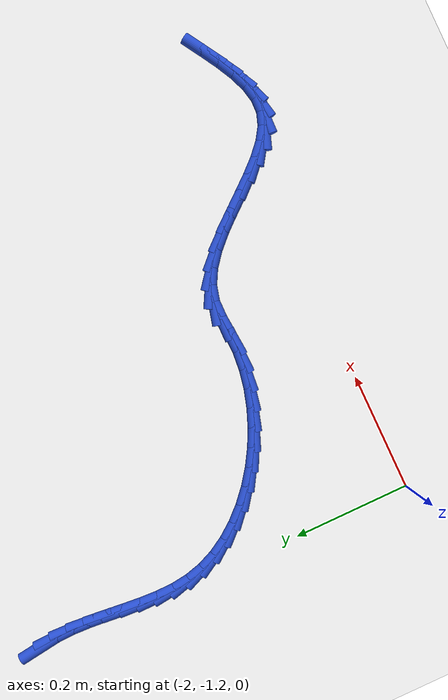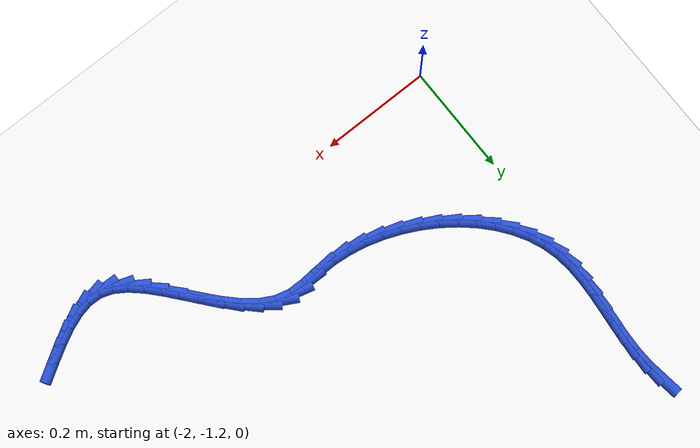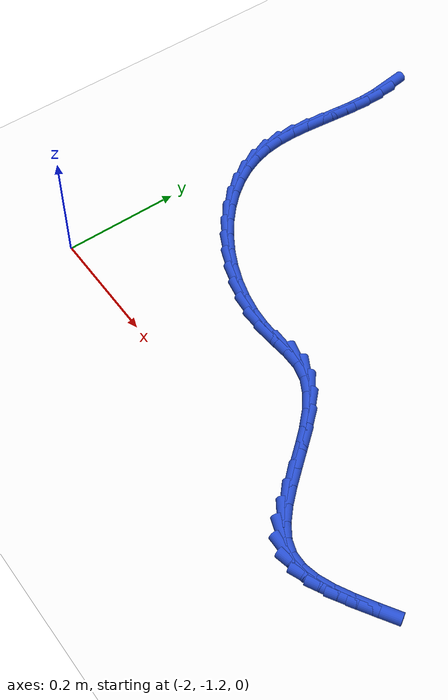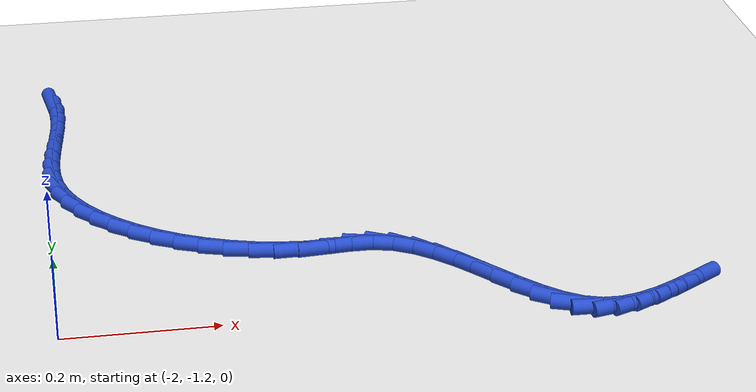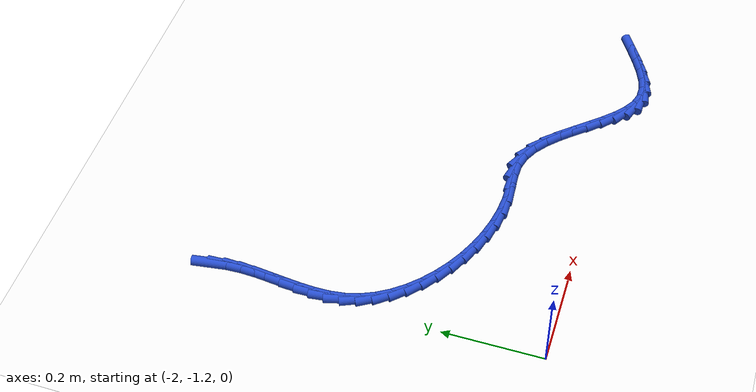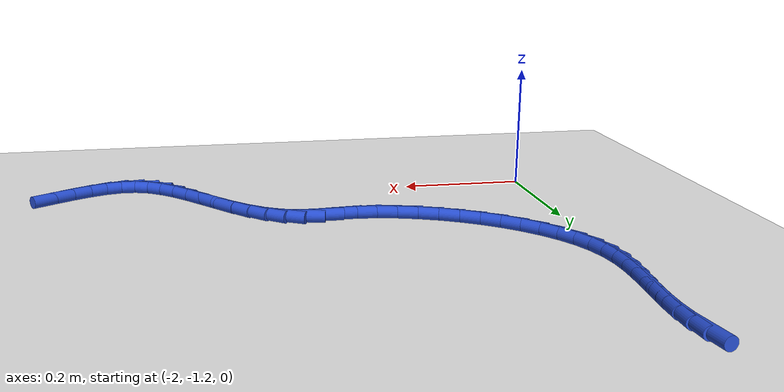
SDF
<sdf version="1.6">
 <world name="default">
  <model name="ground_plane">
   <static>1</static>
   <link name="link">
    <collision name="collision">
     <geometry><plane><normal>0 0 1</normal><size>100 100</size></plane></geometry>
     <surface><friction><ode><mu>100</mu><mu2>50</mu2></ode></friction></surface>
    </collision>
    <visual name="visual">
     <cast_shadows>0</cast_shadows>
     <geometry><plane><normal>0 0 1</normal><size>100 100</size></plane></geometry>
     <material>
      <script><uri>file://media/materials/scripts/gazebo.material</uri><name>Gazebo/WhiteGlow</name></script>
     </material>
    </visual>
   </link>
  </model>
  <model name="line">
   <link name="link_147">
    <pose>-1.9851184222499074 -0.5397213275030551 0.01 0 1.57 -1.4361329957531321</pose>
    <collision name="collision">
     <geometry><cylinder><radius>0.01</radius><length>0.08</length></cylinder></geometry>
    </collision>
    <visual name="visual">
     <material>
      <script><name>Gazebo/Blue</name><uri>file://media/materials/scripts/gazebo.material</uri></script>
     </material>
     <geometry><cylinder><radius>0.01</radius><length>0.08</length></cylinder></geometry>
    </visual>
   </link>
   <link name="link_148">
    <pose>-1.9811357230243811 -0.569117568248268 0.01 0 1.57 -1.5362706568938076</pose>
    <collision name="collision">
     <geometry><cylinder><radius>0.01</radius><length>0.08</length></cylinder></geometry>
    </collision>
    <visual name="visual">
     <material>
      <script><name>Gazebo/Blue</name><uri>file://media/materials/scripts/gazebo.material</uri></script>
     </material>
     <geometry><cylinder><radius>0.01</radius><length>0.08</length></cylinder></geometry>
    </visual>
   </link>
   <link name="link_149">
    <pose>-1.9801048992913468 -0.5989624377405792 0.01 0 1.57 1.5291001168258458</pose>
    <collision name="collision">
     <geometry><cylinder><radius>0.01</radius><length>0.08</length></cylinder></geometry>
    </collision>
    <visual name="visual">
     <material>
      <script><name>Gazebo/Blue</name><uri>file://media/materials/scripts/gazebo.material</uri></script>
     </material>
     <geometry><cylinder><radius>0.01</radius><length>0.08</length></cylinder></geometry>
    </visual>
   </link>
   <link name="link_150">
    <pose>-1.9813637031465046 -0.6291348266380494 0.01 0 1.57 1.483247794115627</pose>
    <collision name="collision">
     <geometry><cylinder><radius>0.01</radius><length>0.08</length></cylinder></geometry>
    </collision>
    <visual name="visual">
     <material>
      <script><name>Gazebo/Blue</name><uri>file://media/materials/scripts/gazebo.material</uri></script>
     </material>
     <geometry><cylinder><radius>0.01</radius><length>0.08</length></cylinder></geometry>
    </visual>
   </link>
   <link name="link_151">
    <pose>-1.9840273328034563 -0.659481661105879 0.01 0 1.57 1.4663427822840627</pose>
    <collision name="collision">
     <geometry><cylinder><radius>0.01</radius><length>0.08</length></cylinder></geometry>
    </collision>
    <visual name="visual">
     <material>
      <script><name>Gazebo/Blue</name><uri>file://media/materials/scripts/gazebo.material</uri></script>
     </material>
     <geometry><cylinder><radius>0.01</radius><length>0.08</length></cylinder></geometry>
    </visual>
   </link>
   <link name="link_152">
    <pose>-1.9872109864758067 -0.6898498673092693 0.01 0 1.57 1.477837445842498</pose>
    <collision name="collision">
     <geometry><cylinder><radius>0.01</radius><length>0.08</length></cylinder></geometry>
    </collision>
    <visual name="visual">
     <material>
      <script><name>Gazebo/Blue</name><uri>file://media/materials/scripts/gazebo.material</uri></script>
     </material>
     <geometry><cylinder><radius>0.01</radius><length>0.08</length></cylinder></geometry>
    </visual>
   </link>
   <link name="link_153">
    <pose>-1.9900298623771602 -0.7200863714134215 0.01 0 1.57 1.5184500077191856</pose>
    <collision name="collision">
     <geometry><cylinder><radius>0.01</radius><length>0.08</length></cylinder></geometry>
    </collision>
    <visual name="visual">
     <material>
      <script><name>Gazebo/Blue</name><uri>file://media/materials/scripts/gazebo.material</uri></script>
     </material>
     <geometry><cylinder><radius>0.01</radius><length>0.08</length></cylinder></geometry>
    </visual>
   </link>
   <link name="link_154">
    <pose>-1.9915991587211195 -0.7500380995835363 0.01 0 1.57 -1.551652249668758</pose>
    <collision name="collision">
     <geometry><cylinder><radius>0.01</radius><length>0.08</length></cylinder></geometry>
    </collision>
    <visual name="visual">
     <material>
      <script><name>Gazebo/Blue</name><uri>file://media/materials/scripts/gazebo.material</uri></script>
     </material>
     <geometry><cylinder><radius>0.01</radius><length>0.08</length></cylinder></geometry>
    </visual>
   </link>
   <link name="link_155">
    <pose>-1.9910340737212884 -0.7795519779848145 0.01 0 1.57 -1.447500241391103</pose>
    <collision name="collision">
     <geometry><cylinder><radius>0.01</radius><length>0.08</length></cylinder></geometry>
    </collision>
    <visual name="visual">
     <material>
      <script><name>Gazebo/Blue</name><uri>file://media/materials/scripts/gazebo.material</uri></script>
     </material>
     <geometry><cylinder><radius>0.01</radius><length>0.08</length></cylinder></geometry>
    </visual>
   </link>
   <link name="link_156">
    <pose>-1.987449805591271 -0.8084749327824576 0.01 0 1.57 -1.3120986927493585</pose>
    <collision name="collision">
     <geometry><cylinder><radius>0.01</radius><length>0.08</length></cylinder></geometry>
    </collision>
    <visual name="visual">
     <material>
      <script><name>Gazebo/Blue</name><uri>file://media/materials/scripts/gazebo.material</uri></script>
     </material>
     <geometry><cylinder><radius>0.01</radius><length>0.08</length></cylinder></geometry>
    </visual>
   </link>
   <link name="link_157">
    <pose>-1.9799932837650576 -0.8366523596493743 0.01 0 1.57 -1.169827588119271</pose>
    <collision name="collision">
     <geometry><cylinder><radius>0.01</radius><length>0.08</length></cylinder></geometry>
    </collision>
    <visual name="visual">
     <material>
      <script><name>Gazebo/Blue</name><uri>file://media/materials/scripts/gazebo.material</uri></script>
     </material>
     <geometry><cylinder><radius>0.01</radius><length>0.08</length></cylinder></geometry>
    </visual>
   </link>
   <link name="link_158">
    <pose>-1.968442368820023 -0.8638992225498932 0.01 0 1.57 -1.041005741564891</pose>
    <collision name="collision">
     <geometry><cylinder><radius>0.01</radius><length>0.08</length></cylinder></geometry>
    </collision>
    <visual name="visual">
     <material>
      <script><name>Gazebo/Blue</name><uri>file://media/materials/scripts/gazebo.material</uri></script>
     </material>
     <geometry><cylinder><radius>0.01</radius><length>0.08</length></cylinder></geometry>
    </visual>
   </link>
   <link name="link_159">
    <pose>-1.9531553630445262 -0.8900024889970934 0.01 0 1.57 -0.9251265914127694</pose>
    <collision name="collision">
     <geometry><cylinder><radius>0.01</radius><length>0.08</length></cylinder></geometry>
    </collision>
    <visual name="visual">
     <material>
      <script><name>Gazebo/Blue</name><uri>file://media/materials/scripts/gazebo.material</uri></script>
     </material>
     <geometry><cylinder><radius>0.01</radius><length>0.08</length></cylinder></geometry>
    </visual>
   </link>
   <link name="link_160">
    <pose>-1.934512180034116 -0.9147480841256446 0.01 0 1.57 -0.8200859170970403</pose>
    <collision name="collision">
     <geometry><cylinder><radius>0.01</radius><length>0.08</length></cylinder></geometry>
    </collision>
    <visual name="visual">
     <material>
      <script><name>Gazebo/Blue</name><uri>file://media/materials/scripts/gazebo.material</uri></script>
     </material>
     <geometry><cylinder><radius>0.01</radius><length>0.08</length></cylinder></geometry>
    </visual>
   </link>
   <link name="link_161">
    <pose>-1.912892733384336 -0.9379219330702155 0.01 0 1.57 -0.7234701782535463</pose>
    <collision name="collision">
     <geometry><cylinder><radius>0.01</radius><length>0.08</length></cylinder></geometry>
    </collision>
    <visual name="visual">
     <material>
      <script><name>Gazebo/Blue</name><uri>file://media/materials/scripts/gazebo.material</uri></script>
     </material>
     <geometry><cylinder><radius>0.01</radius><length>0.08</length></cylinder></geometry>
    </visual>
   </link>
   <link name="link_162">
    <pose>-1.8886769366907337 -0.9593099609654755 0.01 0 1.57 -0.6328593964163669</pose>
    <collision name="collision">
     <geometry><cylinder><radius>0.01</radius><length>0.08</length></cylinder></geometry>
    </collision>
    <visual name="visual">
     <material>
      <script><name>Gazebo/Blue</name><uri>file://media/materials/scripts/gazebo.material</uri></script>
     </material>
     <geometry><cylinder><radius>0.01</radius><length>0.08</length></cylinder></geometry>
    </visual>
   </link>
   <link name="link_163">
    <pose>-1.8622447035488547 -0.978698092946094 0.01 0 1.57 -0.5459390099519175</pose>
    <collision name="collision">
     <geometry><cylinder><radius>0.01</radius><length>0.08</length></cylinder></geometry>
    </collision>
    <visual name="visual">
     <material>
      <script><name>Gazebo/Blue</name><uri>file://media/materials/scripts/gazebo.material</uri></script>
     </material>
     <geometry><cylinder><radius>0.01</radius><length>0.08</length></cylinder></geometry>
    </visual>
   </link>
   <link name="link_164">
    <pose>-1.8339759475542463 -0.9958722541467402 0.01 0 1.57 -0.46050551622645053</pose>
    <collision name="collision">
     <geometry><cylinder><radius>0.01</radius><length>0.08</length></cylinder></geometry>
    </collision>
    <visual name="visual">
     <material>
      <script><name>Gazebo/Blue</name><uri>file://media/materials/scripts/gazebo.material</uri></script>
     </material>
     <geometry><cylinder><radius>0.01</radius><length>0.08</length></cylinder></geometry>
    </visual>
   </link>
   <link name="link_165">
    <pose>-1.8042505823024533 -1.0106183697020832 0.01 0 1.57 -0.3744232012385631</pose>
    <collision name="collision">
     <geometry><cylinder><radius>0.01</radius><length>0.08</length></cylinder></geometry>
    </collision>
    <visual name="visual">
     <material>
      <script><name>Gazebo/Blue</name><uri>file://media/materials/scripts/gazebo.material</uri></script>
     </material>
     <geometry><cylinder><radius>0.01</radius><length>0.08</length></cylinder></geometry>
    </visual>
   </link>
   <link name="link_166">
    <pose>-1.7734485213890223 -1.0227223647467922 0.01 0 1.57 -0.28556732421783004</pose>
    <collision name="collision">
     <geometry><cylinder><radius>0.01</radius><length>0.08</length></cylinder></geometry>
    </collision>
    <visual name="visual">
     <material>
      <script><name>Gazebo/Blue</name><uri>file://media/materials/scripts/gazebo.material</uri></script>
     </material>
     <geometry><cylinder><radius>0.01</radius><length>0.08</length></cylinder></geometry>
    </visual>
   </link>
   <link name="link_167">
    <pose>-1.7419496784094999 -1.0319701644155366 0.01 0 1.57 -0.19177970281806553</pose>
    <collision name="collision">
     <geometry><cylinder><radius>0.01</radius><length>0.08</length></cylinder></geometry>
    </collision>
    <visual name="visual">
     <material>
      <script><name>Gazebo/Blue</name><uri>file://media/materials/scripts/gazebo.material</uri></script>
     </material>
     <geometry><cylinder><radius>0.01</radius><length>0.08</length></cylinder></geometry>
    </visual>
   </link>
   <link name="link_168">
    <pose>-1.710133966959432 -1.0381476938429852 0.01 0 1.57 -0.09086535809953926</pose>
    <collision name="collision">
     <geometry><cylinder><radius>0.01</radius><length>0.08</length></cylinder></geometry>
    </collision>
    <visual name="visual">
     <material>
      <script><name>Gazebo/Blue</name><uri>file://media/materials/scripts/gazebo.material</uri></script>
     </material>
     <geometry><cylinder><radius>0.01</radius><length>0.08</length></cylinder></geometry>
    </visual>
   </link>
   <link name="link_169">
    <pose>-1.6783813006343646 -1.0410408781638076 0.01 0 1.57 0.018235758841825666</pose>
    <collision name="collision">
     <geometry><cylinder><radius>0.01</radius><length>0.08</length></cylinder></geometry>
    </collision>
    <visual name="visual">
     <material>
      <script><name>Gazebo/Blue</name><uri>file://media/materials/scripts/gazebo.material</uri></script>
     </material>
     <geometry><cylinder><radius>0.01</radius><length>0.08</length></cylinder></geometry>
    </visual>
   </link>
   <link name="link_170">
    <pose>-1.6470725699707507 -1.0404698764061855 0.01 0 1.57 0.07714940785560871</pose>
    <collision name="collision">
     <geometry><cylinder><radius>0.01</radius><length>0.08</length></cylinder></geometry>
    </collision>
    <visual name="visual">
     <material>
      <script><name>Gazebo/Blue</name><uri>file://media/materials/scripts/gazebo.material</uri></script>
     </material>
     <geometry><cylinder><radius>0.01</radius><length>0.08</length></cylinder></geometry>
    </visual>
   </link>
   <link name="link_171">
    <pose>-1.6166418202700834 -1.03811749308026 0.01 0 1.57 -0.011403360086827173</pose>
    <collision name="collision">
     <geometry><cylinder><radius>0.01</radius><length>0.08</length></cylinder></geometry>
    </collision>
    <visual name="visual">
     <material>
      <script><name>Gazebo/Blue</name><uri>file://media/materials/scripts/gazebo.material</uri></script>
     </material>
     <geometry><cylinder><radius>0.01</radius><length>0.08</length></cylinder></geometry>
    </visual>
   </link>
   <link name="link_172">
    <pose>-1.5876024908848778 -1.0384486533643653 0.01 0 1.57 -0.2538470353343866</pose>
    <collision name="collision">
     <geometry><cylinder><radius>0.01</radius><length>0.08</length></cylinder></geometry>
    </collision>
    <visual name="visual">
     <material>
      <script><name>Gazebo/Blue</name><uri>file://media/materials/scripts/gazebo.material</uri></script>
     </material>
     <geometry><cylinder><radius>0.01</radius><length>0.08</length></cylinder></geometry>
    </visual>
   </link>
   <link name="link_173">
    <pose>-1.5603892082314181 -1.045508971667431 0.01 0 1.57 -0.49740982913338744</pose>
    <collision name="collision">
     <geometry><cylinder><radius>0.01</radius><length>0.08</length></cylinder></geometry>
    </collision>
    <visual name="visual">
     <material>
      <script><name>Gazebo/Blue</name><uri>file://media/materials/scripts/gazebo.material</uri></script>
     </material>
     <geometry><cylinder><radius>0.01</radius><length>0.08</length></cylinder></geometry>
    </visual>
   </link>
   <link name="link_174">
    <pose>-1.5349089336717958 -1.0593433347889012 0.01 0 1.57 -0.6719927715885784</pose>
    <collision name="collision">
     <geometry><cylinder><radius>0.01</radius><length>0.08</length></cylinder></geometry>
    </collision>
    <visual name="visual">
     <material>
      <script><name>Gazebo/Blue</name><uri>file://media/materials/scripts/gazebo.material</uri></script>
     </material>
     <geometry><cylinder><radius>0.01</radius><length>0.08</length></cylinder></geometry>
    </visual>
   </link>
   <link name="link_175">
    <pose>-1.5108671037817143 -1.0784686796090488 0.01 0 1.57 -0.78609342332403</pose>
    <collision name="collision">
     <geometry><cylinder><radius>0.01</radius><length>0.08</length></cylinder></geometry>
    </collision>
    <visual name="visual">
     <material>
      <script><name>Gazebo/Blue</name><uri>file://media/materials/scripts/gazebo.material</uri></script>
     </material>
     <geometry><cylinder><radius>0.01</radius><length>0.08</length></cylinder></geometry>
    </visual>
   </link>
   <link name="link_176">
    <pose>-1.4879687528988577 -1.1013988932614536 0.01 0 1.57 -0.852931939562418</pose>
    <collision name="collision">
     <geometry><cylinder><radius>0.01</radius><length>0.08</length></cylinder></geometry>
    </collision>
    <visual name="visual">
     <material>
      <script><name>Gazebo/Blue</name><uri>file://media/materials/scripts/gazebo.material</uri></script>
     </material>
     <geometry><cylinder><radius>0.01</radius><length>0.08</length></cylinder></geometry>
    </visual>
   </link>
   <link name="link_177">
    <pose>-1.4659189153609062 -1.126647862879697 0.01 0 1.57 -0.8814764858725342</pose>
    <collision name="collision">
     <geometry><cylinder><radius>0.01</radius><length>0.08</length></cylinder></geometry>
    </collision>
    <visual name="visual">
     <material>
      <script><name>Gazebo/Blue</name><uri>file://media/materials/scripts/gazebo.material</uri></script>
     </material>
     <geometry><cylinder><radius>0.01</radius><length>0.08</length></cylinder></geometry>
    </visual>
   </link>
   <link name="link_178">
    <pose>-1.444422625505544 -1.1527294755973587 0.01 0 1.57 -0.8749545762829078</pose>
    <collision name="collision">
     <geometry><cylinder><radius>0.01</radius><length>0.08</length></cylinder></geometry>
    </collision>
    <visual name="visual">
     <material>
      <script><name>Gazebo/Blue</name><uri>file://media/materials/scripts/gazebo.material</uri></script>
     </material>
     <geometry><cylinder><radius>0.01</radius><length>0.08</length></cylinder></geometry>
    </visual>
   </link>
   <link name="link_179">
    <pose>-1.4231849176704532 -1.1781576185480196 0.01 0 1.57 -0.8305727263127661</pose>
    <collision name="collision">
     <geometry><cylinder><radius>0.01</radius><length>0.08</length></cylinder></geometry>
    </collision>
    <visual name="visual">
     <material>
      <script><name>Gazebo/Blue</name><uri>file://media/materials/scripts/gazebo.material</uri></script>
     </material>
     <geometry><cylinder><radius>0.01</radius><length>0.08</length></cylinder></geometry>
    </visual>
   </link>
   <link name="link_180">
    <pose>-1.401910826193317 -1.2014461788652593 0.01 0 1.57 -0.7383610224349136</pose>
    <collision name="collision">
     <geometry><cylinder><radius>0.01</radius><length>0.08</length></cylinder></geometry>
    </collision>
    <visual name="visual">
     <material>
      <script><name>Gazebo/Blue</name><uri>file://media/materials/scripts/gazebo.material</uri></script>
     </material>
     <geometry><cylinder><radius>0.01</radius><length>0.08</length></cylinder></geometry>
    </visual>
   </link>
   <link name="link_181">
    <pose>-1.3803053854118177 -1.2211090436826582 0.01 0 1.57 -0.5795438877144233</pose>
    <collision name="collision">
     <geometry><cylinder><radius>0.01</radius><length>0.08</length></cylinder></geometry>
    </collision>
    <visual name="visual">
     <material>
      <script><name>Gazebo/Blue</name><uri>file://media/materials/scripts/gazebo.material</uri></script>
     </material>
     <geometry><cylinder><radius>0.01</radius><length>0.08</length></cylinder></geometry>
    </visual>
   </link>
   <link name="link_182">
    <pose>-1.3580736296636389 -1.2356601001337975 0.01 0 1.57 -0.3310881322935057</pose>
    <collision name="collision">
     <geometry><cylinder><radius>0.01</radius><length>0.08</length></cylinder></geometry>
    </collision>
    <visual name="visual">
     <material>
      <script><name>Gazebo/Blue</name><uri>file://media/materials/scripts/gazebo.material</uri></script>
     </material>
     <geometry><cylinder><radius>0.01</radius><length>0.08</length></cylinder></geometry>
    </visual>
   </link>
   <link name="link_183">
    <pose>-1.3349213450894724 -1.2436184922914089 0.01 0 1.57 -0.02928882889198799</pose>
    <collision name="collision">
     <geometry><cylinder><radius>0.01</radius><length>0.08</length></cylinder></geometry>
    </collision>
    <visual name="visual">
     <material>
      <script><name>Gazebo/Blue</name><uri>file://media/materials/scripts/gazebo.material</uri></script>
     </material>
     <geometry><cylinder><radius>0.01</radius><length>0.08</length></cylinder></geometry>
    </visual>
   </link>
   <link name="link_184">
    <pose>-1.3106723817229948 -1.2443289191850122 0.01 0 1.57 0.21334446643645025</pose>
    <collision name="collision">
     <geometry><cylinder><radius>0.01</radius><length>0.08</length></cylinder></geometry>
    </collision>
    <visual name="visual">
     <material>
      <script><name>Gazebo/Blue</name><uri>file://media/materials/scripts/gazebo.material</uri></script>
     </material>
     <geometry><cylinder><radius>0.01</radius><length>0.08</length></cylinder></geometry>
    </visual>
   </link>
   <link name="link_185">
    <pose>-1.285396134545599 -1.2388530387176546 0.01 0 1.57 0.3773776385320751</pose>
    <collision name="collision">
     <geometry><cylinder><radius>0.01</radius><length>0.08</length></cylinder></geometry>
    </collision>
    <visual name="visual">
     <material>
      <script><name>Gazebo/Blue</name><uri>file://media/materials/scripts/gazebo.material</uri></script>
     </material>
     <geometry><cylinder><radius>0.01</radius><length>0.08</length></cylinder></geometry>
    </visual>
   </link>
   <link name="link_186">
    <pose>-1.2591926181995394 -1.2284666150035255 0.01 0 1.57 0.4785054174654746</pose>
    <collision name="collision">
     <geometry><cylinder><radius>0.01</radius><length>0.08</length></cylinder></geometry>
    </collision>
    <visual name="visual">
     <material>
      <script><name>Gazebo/Blue</name><uri>file://media/materials/scripts/gazebo.material</uri></script>
     </material>
     <geometry><cylinder><radius>0.01</radius><length>0.08</length></cylinder></geometry>
    </visual>
   </link>
   <link name="link_187">
    <pose>-1.2321618473270697 -1.2144454121568118 0.01 0 1.57 0.5331140495599519</pose>
    <collision name="collision">
     <geometry><cylinder><radius>0.01</radius><length>0.08</length></cylinder></geometry>
    </collision>
    <visual name="visual">
     <material>
      <script><name>Gazebo/Blue</name><uri>file://media/materials/scripts/gazebo.material</uri></script>
     </material>
     <geometry><cylinder><radius>0.01</radius><length>0.08</length></cylinder></geometry>
    </visual>
   </link>
   <link name="link_188">
    <pose>-1.2044038365704441 -1.1980651942917027 0.01 0 1.57 0.55154334065536</pose>
    <collision name="collision">
     <geometry><cylinder><radius>0.01</radius><length>0.08</length></cylinder></geometry>
    </collision>
    <visual name="visual">
     <material>
      <script><name>Gazebo/Blue</name><uri>file://media/materials/scripts/gazebo.material</uri></script>
     </material>
     <geometry><cylinder><radius>0.01</radius><length>0.08</length></cylinder></geometry>
    </visual>
   </link>
  </model>
 </world>
</sdf>
